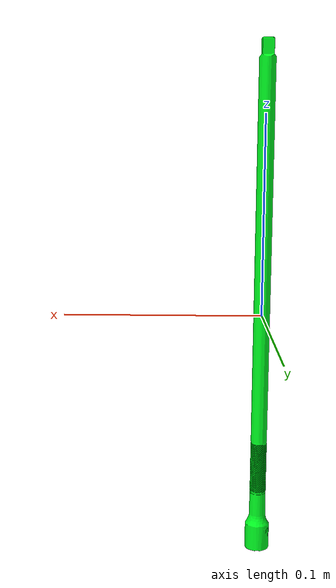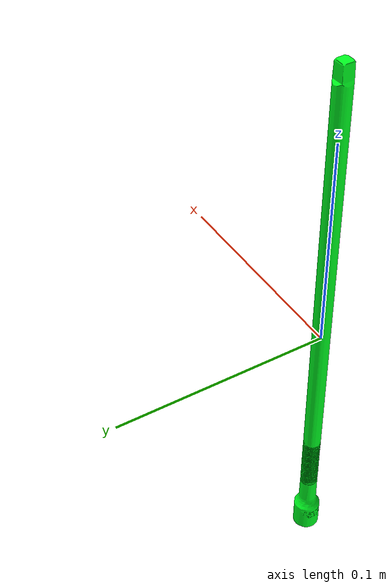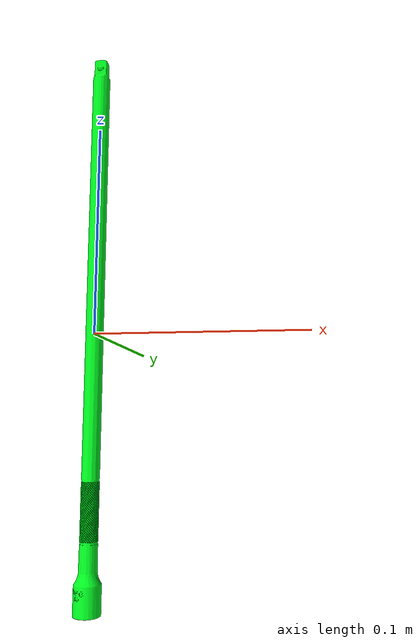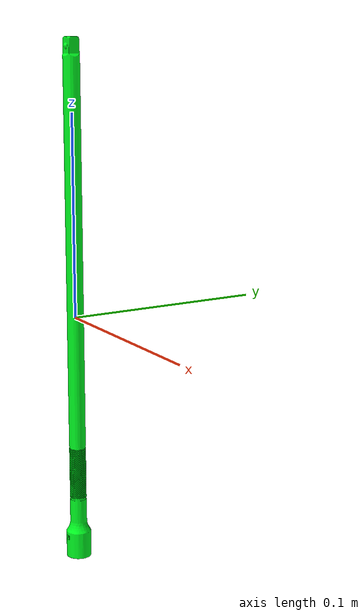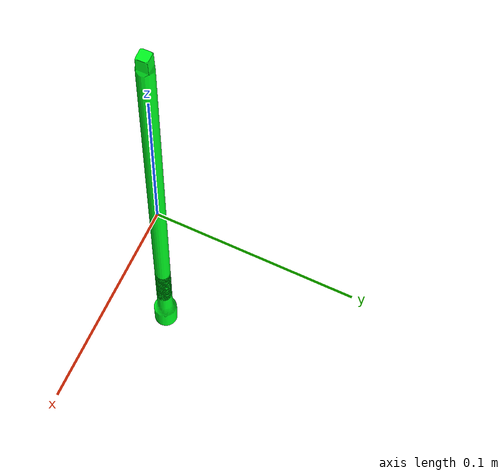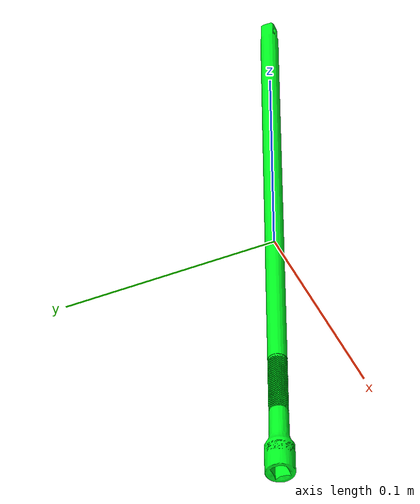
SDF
<?xml version="1.0"?>
<sdf version="1.7">
  <model name="socket_extension_1_4in_260mm_bright">
    <pose>0 0 0 0 0 0</pose>
    <static>false</static>
    <link name="link">
      <!-- link frame = tool CoM; Z = long axis (+ toward tool end), X = forward, Y = Z x X -->
      <inertial>
        <pose>0 0 0 0 0 0</pose>
        <mass>0.110035</mass>
        <inertia>
          <ixx>6.396544e-04</ixx>
          <ixy>9.583283e-13</ixy>
          <ixz>1.924615e-11</ixz>
          <iyy>6.396534e-04</iyy>
          <iyz>7.886677e-10</iyz>
          <izz>1.066632e-06</izz>
        </inertia>
      </inertial>
      <collision name="collision">
        <geometry>
          <mesh>
            <uri>model://socket_extension_1_4in_260mm/meshes/socket_extension_1_4in_260mm.dae</uri>
          </mesh>
        </geometry>
      </collision>
      <visual name="visual">
        <geometry>
          <mesh>
            <uri>model://socket_extension_1_4in_260mm/meshes/socket_extension_1_4in_260mm.dae</uri>
          </mesh>
        </geometry>
        <material>
          <ambient>0.000 0.450 0.058 1.0</ambient>
          <diffuse>0.000 1.000 0.130 1.0</diffuse>
          <specular>0.85 0.85 0.85 1.0</specular>
          <emissive>0 0 0 1.0</emissive>
        </material>
      </visual>
    </link>
  </model>
</sdf>
